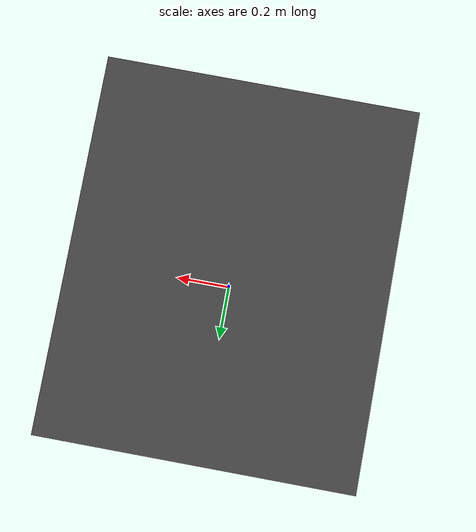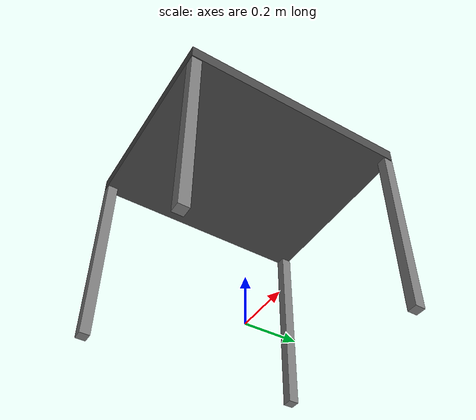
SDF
<?xml version='1.0'?>
<sdf version='1.7'>
  <model name='PFM52503'>
	<link name = "base_link">
		<inertial>
			<mass>24</mass>
			<inertia>
				<ixx>1.62</ixx>
				<ixy>0</ixy>
				<ixz>0</ixz>
				<iyy>2.745</iyy>
				<iyz>0</iyz>
				<izz>1.13105</izz>
			</inertia>
		</inertial>
		<pose>0 0 0 0 -0 0</pose>
		<visual name="visual">
			<pose>0 0 0.7595 0 0 0</pose>
			<geometry>
				<box>
					<size>0.75 0.9 0.055</size>
				</box>
			</geometry>
			<material>
				<diffuse>0.3 0.3 0.3 1</diffuse>
			</material>
		</visual>
		<collision name="collision">
			<pose>0 0 0.7595 0 0 0</pose>
			<geometry>
				<box>
					<size>0.75 0.9 0.055</size>
				</box>
			</geometry>
		</collision>
	</link>
	<link name = "front_left_leg">
		<inertial>
			<mass>14</mass>
			<inertia>
				<ixx>0.62</ixx>
				<ixy>0</ixy>
				<ixz>0</ixz>
				<iyy>0.0037</iyy>
				<iyz>0</iyz>
				<izz>0.62</izz>
			</inertia>
		</inertial>
		<pose>0 0 0 0 -0 0</pose>
		<visual name="visual">
			<pose>0.355 0.43 0.3635 0 0 0</pose>
			<geometry>
				<box>
					<size>0.04 0.04 0.727</size>
				</box>
			</geometry>
			<material>
				<diffuse>0.5 0.5 0.5 1</diffuse>
			</material>
		</visual>
		<collision name="collision">
			<pose>0.355 0.43 0.3635 0 0 0</pose>
			<geometry>
				<box>
					<size>0.04 0.04 0.727</size>
				</box>
			</geometry>
		</collision>
	</link>
	<link name = "front_right_leg">
		<inertial>
			<mass>14</mass>
			<inertia>
				<ixx>0.62</ixx>
				<ixy>0</ixy>
				<ixz>0</ixz>
				<iyy>0.0037</iyy>
				<iyz>0</iyz>
				<izz>0.62</izz>
			</inertia>
		</inertial>
		<pose>0 0 0 0 -0 0</pose>
		<visual name="visual">
			<pose>0.355 -0.43 0.3635 0 0 0</pose>
			<geometry>
				<box>
					<size>0.04 0.04 0.727</size>
				</box>
			</geometry>
			<material>
				<diffuse>0.5 0.5 0.5 1</diffuse>
			</material>
		</visual>
		<collision name="collision">
			<pose>0.355 -0.43 0.3635 0 0 0</pose>
			<geometry>
				<box>
					<size>0.04 0.04 0.727</size>
				</box>
			</geometry>
		</collision>
	</link>
	<link name = "back_right_leg">
		<inertial>
			<mass>14</mass>
			<inertia>
				<ixx>0.62</ixx>
				<ixy>0</ixy>
				<ixz>0</ixz>
				<iyy>0.0037</iyy>
				<iyz>0</iyz>
				<izz>0.62</izz>
			</inertia>
		</inertial>
		<pose>0 0 0 0 -0 0</pose>
		<visual name="visual">
			<pose>-0.355 -0.43 0.3635 0 0 0</pose>
			<geometry>
				<box>
					<size>0.04 0.04 0.727</size>
				</box>
			</geometry>
			<material>
				<diffuse>0.5 0.5 0.5 1</diffuse>
			</material>
		</visual>
		<collision name="collision">
			<pose>-0.355 -0.43 0.3635 0 0 0</pose>
			<geometry>
				<box>
					<size>0.04 0.04 0.727</size>
				</box>
			</geometry>
		</collision>
	</link>
	<link name = "back_left_leg">
		<inertial>
			<mass>14</mass>
			<inertia>
				<ixx>0.62</ixx>
				<ixy>0</ixy>
				<ixz>0</ixz>
				<iyy>0.0037</iyy>
				<iyz>0</iyz>
				<izz>0.62</izz>
			</inertia>
		</inertial>
		<pose>0 0 0 0 -0 0</pose>
		<visual name="visual">
			<pose>-0.355 0.43 0.3635 0 0 0</pose>
			<geometry>
				<box>
					<size>0.04 0.04 0.727</size>
				</box>
			</geometry>
			<material>
				<diffuse>0.5 0.5 0.5 1</diffuse>
			</material>
		</visual>
		<collision name="collision">
			<pose>-0.355 0.43 0.3635 0 0 0</pose>
			<geometry>
				<box>
					<size>0.04 0.04 0.727</size>
				</box>
			</geometry>
		</collision>
	</link>
    <joint name='base_front_left' type='fixed'>
		<parent>base_link</parent>
		<child>front_left_leg</child>
		<pose>0 0 0 0 -0 0</pose>
    </joint>
    <joint name='base_front_right' type='fixed'>
		<parent>base_link</parent>
		<child>front_right_leg</child>
		<pose>0 0 0 0 -0 0</pose>
    </joint>
    <joint name='base_back_right' type='fixed'>
		<parent>base_link</parent>
		<child>back_right_leg</child>
		<pose>0 0 0 0 -0 0</pose>
    </joint>
    <joint name='base_back_left' type='fixed'>
		<parent>base_link</parent>
		<child>back_left_leg</child>
		<pose>0 0 0 0 -0 0</pose>
    </joint>
  </model>
</sdf>
